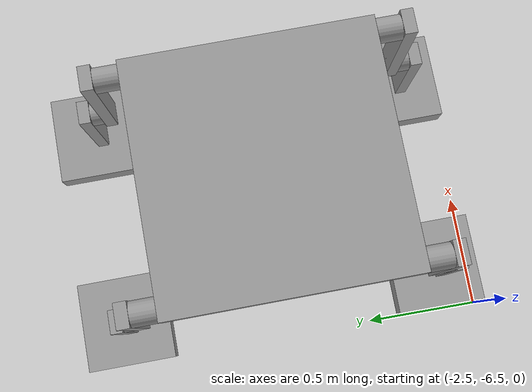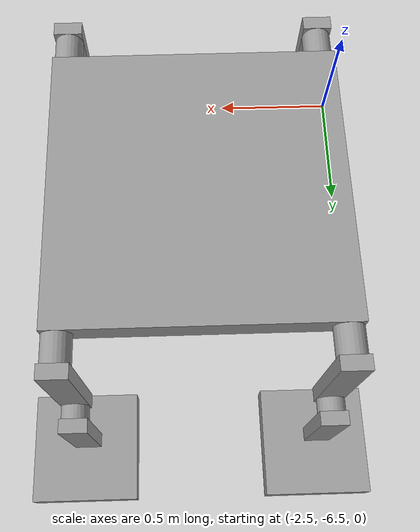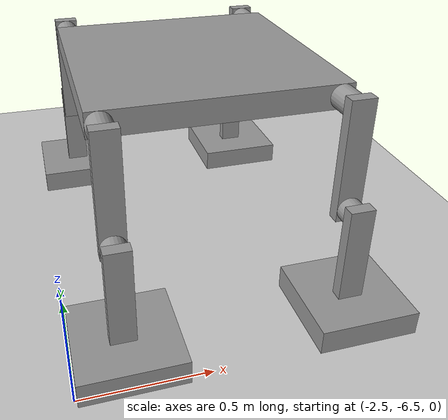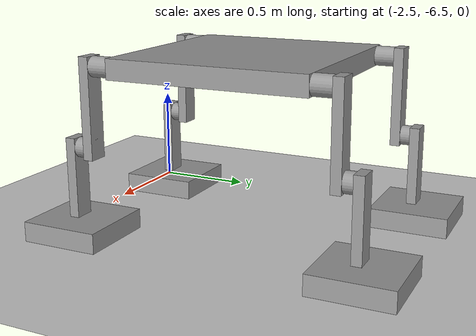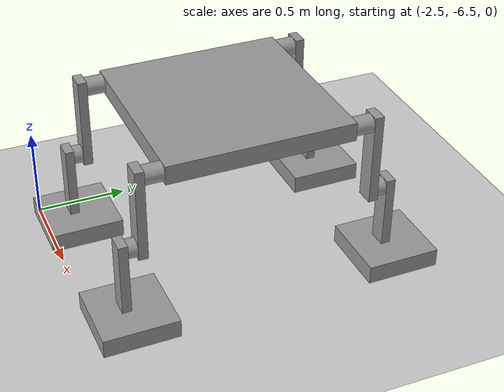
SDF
<sdf version="1.6">
 <world name="default">
  <model name="ground_plane">
   <static>1</static>
   <link name="link">
    <collision name="collision">
     <geometry><plane><normal>0 0 1</normal><size>100 100</size></plane></geometry>
     <surface>
      <contact><collide_bitmask>65535</collide_bitmask></contact>
      <friction><ode><mu>100</mu><mu2>50</mu2></ode></friction>
     </surface>
    </collision>
    <visual name="visual">
     <cast_shadows>0</cast_shadows>
     <geometry><plane><normal>0 0 1</normal><size>100 100</size></plane></geometry>
     <material>
      <script><uri>file://media/materials/scripts/gazebo.material</uri><name>Gazebo/Grey</name></script>
     </material>
    </visual>
   </link>
  </model>
  <model name="HumanoidRobot_2">
   <link name="link_0">
    <inertial>
     <mass>1</mass>
     <inertia>
      <ixx>0.166667</ixx>
      <ixy>0</ixy>
      <ixz>0</ixz>
      <iyy>0.166667</iyy>
      <iyz>0</iyz>
      <izz>0.166667</izz>
     </inertia>
    </inertial>
    <pose>-0 0 1 0 -0 0</pose>
    <visual name="visual">
     <geometry><box><size>1 1 0.1</size></box></geometry>
     <material>
      <lighting>1</lighting>
      <script><uri>file://media/materials/scripts/gazebo.material</uri><name>Gazebo/Grey</name></script>
      <shader type="pixel"><normal_map>__default__</normal_map></shader>
      <ambient>0.3 0.3 0.3 1</ambient>
      <diffuse>0.7 0.7 0.7 1</diffuse>
      <specular>0.01 0.01 0.01 1</specular>
      <emissive>0 0 0 1</emissive>
     </material>
    </visual>
    <collision name="collision">
     <geometry><box><size>1 1 0.1</size></box></geometry>
     <surface>
      <friction>
       <ode><mu>1</mu><mu2>1</mu2><fdir1>0 0 0</fdir1><slip1>0</slip1><slip2>0</slip2></ode>
       <torsional>
        <coefficient>1</coefficient>
        <patch_radius>0</patch_radius>
        <surface_radius>0</surface_radius>
        <use_patch_radius>1</use_patch_radius>
        <ode><slip>0</slip></ode>
       </torsional>
      </friction>
      <bounce><restitution_coefficient>0</restitution_coefficient><threshold>1e+06</threshold></bounce>
      <contact>
       <collide_without_contact>0</collide_without_contact>
       <collide_without_contact_bitmask>1</collide_without_contact_bitmask>
       <collide_bitmask>1</collide_bitmask>
       <ode>
        <soft_cfm>0</soft_cfm>
        <soft_erp>0.2</soft_erp>
        <kp>1e+13</kp>
        <kd>1</kd>
        <max_vel>0.01</max_vel>
        <min_depth>0</min_depth>
       </ode>
       <bullet>
        <split_impulse>1</split_impulse>
        <split_impulse_penetration_threshold>-0.01</split_impulse_penetration_threshold>
        <soft_cfm>0</soft_cfm>
        <soft_erp>0.2</soft_erp>
        <kp>1e+13</kp>
        <kd>1</kd>
       </bullet>
      </contact>
     </surface>
    </collision>
   </link>
   <link name="link_0_0">
    <inertial>
     <mass>1</mass>
     <inertia><ixx>0.145833</ixx><ixy>0</ixy><ixz>0</ixz><iyy>0.145833</iyy><iyz>0</iyz><izz>0.125</izz></inertia>
    </inertial>
    <pose>-0.45 -0.550013 1 1.5707 -0 0</pose>
    <visual name="visual">
     <geometry><cylinder><radius>0.05</radius><length>0.1</length></cylinder></geometry>
     <material>
      <lighting>1</lighting>
      <script><uri>file://media/materials/scripts/gazebo.material</uri><name>Gazebo/Grey</name></script>
      <shader type="pixel"><normal_map>__default__</normal_map></shader>
      <ambient>0.3 0.3 0.3 1</ambient>
      <diffuse>0.7 0.7 0.7 1</diffuse>
      <specular>0.01 0.01 0.01 1</specular>
      <emissive>0 0 0 1</emissive>
     </material>
    </visual>
    <collision name="collision">
     <geometry><cylinder><radius>0.05</radius><length>0.1</length></cylinder></geometry>
     <surface>
      <friction>
       <ode><mu>1</mu><mu2>1</mu2><fdir1>0 0 0</fdir1><slip1>0</slip1><slip2>0</slip2></ode>
       <torsional>
        <coefficient>1</coefficient>
        <patch_radius>0</patch_radius>
        <surface_radius>0</surface_radius>
        <use_patch_radius>1</use_patch_radius>
        <ode><slip>0</slip></ode>
       </torsional>
      </friction>
      <bounce><restitution_coefficient>0</restitution_coefficient><threshold>1e+06</threshold></bounce>
      <contact>
       <collide_without_contact>0</collide_without_contact>
       <collide_without_contact_bitmask>1</collide_without_contact_bitmask>
       <collide_bitmask>1</collide_bitmask>
       <ode>
        <soft_cfm>0</soft_cfm>
        <soft_erp>0.2</soft_erp>
        <kp>1e+13</kp>
        <kd>1</kd>
        <max_vel>0.01</max_vel>
        <min_depth>0</min_depth>
       </ode>
       <bullet>
        <split_impulse>1</split_impulse>
        <split_impulse_penetration_threshold>-0.01</split_impulse_penetration_threshold>
        <soft_cfm>0</soft_cfm>
        <soft_erp>0.2</soft_erp>
        <kp>1e+13</kp>
        <kd>1</kd>
       </bullet>
      </contact>
     </surface>
    </collision>
   </link>
   <link name="link_0_0_clone">
    <inertial>
     <mass>1</mass>
     <inertia><ixx>0.145833</ixx><ixy>0</ixy><ixz>0</ixz><iyy>0.145833</iyy><iyz>0</iyz><izz>0.125</izz></inertia>
    </inertial>
    <pose>-0.45 0.550005 1 1.5707 -0 0</pose>
    <visual name="visual_0">
     <geometry><cylinder><radius>0.05</radius><length>0.1</length></cylinder></geometry>
     <material>
      <lighting>1</lighting>
      <script><uri>file://media/materials/scripts/gazebo.material</uri><name>Gazebo/Grey</name></script>
      <shader type="pixel"><normal_map>__default__</normal_map></shader>
      <ambient>0.3 0.3 0.3 1</ambient>
      <diffuse>0.7 0.7 0.7 1</diffuse>
      <specular>0.01 0.01 0.01 1</specular>
      <emissive>0 0 0 1</emissive>
     </material>
    </visual>
    <collision name="collision">
     <geometry><cylinder><radius>0.05</radius><length>0.1</length></cylinder></geometry>
     <surface>
      <friction>
       <ode><mu>1</mu><mu2>1</mu2><fdir1>0 0 0</fdir1><slip1>0</slip1><slip2>0</slip2></ode>
       <torsional>
        <coefficient>1</coefficient>
        <patch_radius>0</patch_radius>
        <surface_radius>0</surface_radius>
        <use_patch_radius>1</use_patch_radius>
        <ode><slip>0</slip></ode>
       </torsional>
      </friction>
      <bounce><restitution_coefficient>0</restitution_coefficient><threshold>1e+06</threshold></bounce>
      <contact>
       <collide_without_contact>0</collide_without_contact>
       <collide_without_contact_bitmask>1</collide_without_contact_bitmask>
       <collide_bitmask>1</collide_bitmask>
       <ode>
        <soft_cfm>0</soft_cfm>
        <soft_erp>0.2</soft_erp>
        <kp>1e+13</kp>
        <kd>1</kd>
        <max_vel>0.01</max_vel>
        <min_depth>0</min_depth>
       </ode>
       <bullet>
        <split_impulse>1</split_impulse>
        <split_impulse_penetration_threshold>-0.01</split_impulse_penetration_threshold>
        <soft_cfm>0</soft_cfm>
        <soft_erp>0.2</soft_erp>
        <kp>1e+13</kp>
        <kd>1</kd>
       </bullet>
      </contact>
     </surface>
    </collision>
   </link>
   <link name="link_0_0_clone_0">
    <inertial>
     <mass>1</mass>
     <inertia><ixx>0.145833</ixx><ixy>0</ixy><ixz>0</ixz><iyy>0.145833</iyy><iyz>0</iyz><izz>0.125</izz></inertia>
    </inertial>
    <pose>0.45 -0.550005 1 1.5707 -0 0</pose>
    <visual name="visual_0">
     <geometry><cylinder><radius>0.05</radius><length>0.1</length></cylinder></geometry>
     <material>
      <lighting>1</lighting>
      <script><uri>file://media/materials/scripts/gazebo.material</uri><name>Gazebo/Grey</name></script>
      <shader type="pixel"><normal_map>__default__</normal_map></shader>
      <ambient>0.3 0.3 0.3 1</ambient>
      <diffuse>0.7 0.7 0.7 1</diffuse>
      <specular>0.01 0.01 0.01 1</specular>
      <emissive>0 0 0 1</emissive>
     </material>
    </visual>
    <collision name="collision">
     <geometry><cylinder><radius>0.05</radius><length>0.1</length></cylinder></geometry>
     <surface>
      <friction>
       <ode><mu>1</mu><mu2>1</mu2><fdir1>0 0 0</fdir1><slip1>0</slip1><slip2>0</slip2></ode>
       <torsional>
        <coefficient>1</coefficient>
        <patch_radius>0</patch_radius>
        <surface_radius>0</surface_radius>
        <use_patch_radius>1</use_patch_radius>
        <ode><slip>0</slip></ode>
       </torsional>
      </friction>
      <bounce><restitution_coefficient>0</restitution_coefficient><threshold>1e+06</threshold></bounce>
      <contact>
       <collide_without_contact>0</collide_without_contact>
       <collide_without_contact_bitmask>1</collide_without_contact_bitmask>
       <collide_bitmask>1</collide_bitmask>
       <ode>
        <soft_cfm>0</soft_cfm>
        <soft_erp>0.2</soft_erp>
        <kp>1e+13</kp>
        <kd>1</kd>
        <max_vel>0.01</max_vel>
        <min_depth>0</min_depth>
       </ode>
       <bullet>
        <split_impulse>1</split_impulse>
        <split_impulse_penetration_threshold>-0.01</split_impulse_penetration_threshold>
        <soft_cfm>0</soft_cfm>
        <soft_erp>0.2</soft_erp>
        <kp>1e+13</kp>
        <kd>1</kd>
       </bullet>
      </contact>
     </surface>
    </collision>
   </link>
   <link name="link_0_0_clone_1">
    <inertial>
     <mass>1</mass>
     <inertia><ixx>0.145833</ixx><ixy>0</ixy><ixz>0</ixz><iyy>0.145833</iyy><iyz>0</iyz><izz>0.125</izz></inertia>
    </inertial>
    <pose>0.45 0.550005 1 1.5707 -0 0</pose>
    <visual name="visual_0">
     <geometry><cylinder><radius>0.05</radius><length>0.1</length></cylinder></geometry>
     <material>
      <lighting>1</lighting>
      <script><uri>file://media/materials/scripts/gazebo.material</uri><name>Gazebo/Grey</name></script>
      <shader type="pixel"><normal_map>__default__</normal_map></shader>
      <ambient>0.3 0.3 0.3 1</ambient>
      <diffuse>0.7 0.7 0.7 1</diffuse>
      <specular>0.01 0.01 0.01 1</specular>
      <emissive>0 0 0 1</emissive>
     </material>
    </visual>
    <collision name="collision">
     <geometry><cylinder><radius>0.05</radius><length>0.1</length></cylinder></geometry>
     <surface>
      <friction>
       <ode><mu>1</mu><mu2>1</mu2><fdir1>0 0 0</fdir1><slip1>0</slip1><slip2>0</slip2></ode>
       <torsional>
        <coefficient>1</coefficient>
        <patch_radius>0</patch_radius>
        <surface_radius>0</surface_radius>
        <use_patch_radius>1</use_patch_radius>
        <ode><slip>0</slip></ode>
       </torsional>
      </friction>
      <bounce><restitution_coefficient>0</restitution_coefficient><threshold>1e+06</threshold></bounce>
      <contact>
       <collide_without_contact>0</collide_without_contact>
       <collide_without_contact_bitmask>1</collide_without_contact_bitmask>
       <collide_bitmask>1</collide_bitmask>
       <ode>
        <soft_cfm>0</soft_cfm>
        <soft_erp>0.2</soft_erp>
        <kp>1e+13</kp>
        <kd>1</kd>
        <max_vel>0.01</max_vel>
        <min_depth>0</min_depth>
       </ode>
       <bullet>
        <split_impulse>1</split_impulse>
        <split_impulse_penetration_threshold>-0.01</split_impulse_penetration_threshold>
        <soft_cfm>0</soft_cfm>
        <soft_erp>0.2</soft_erp>
        <kp>1e+13</kp>
        <kd>1</kd>
       </bullet>
      </contact>
     </surface>
    </collision>
   </link>
   <link name="link_0_0_clone_clone">
    <inertial>
     <mass>1</mass>
     <inertia><ixx>0.145833</ixx><ixy>0</ixy><ixz>0</ixz><iyy>0.145833</iyy><iyz>0</iyz><izz>0.125</izz></inertia>
    </inertial>
    <pose>-0.45 0.650015 0.60001 1.5707 -0 0</pose>
    <visual name="visual_0">
     <geometry><cylinder><radius>0.05</radius><length>0.1</length></cylinder></geometry>
     <material>
      <lighting>1</lighting>
      <script><uri>file://media/materials/scripts/gazebo.material</uri><name>Gazebo/Grey</name></script>
      <shader type="pixel"><normal_map>__default__</normal_map></shader>
      <ambient>0.3 0.3 0.3 1</ambient>
      <diffuse>0.7 0.7 0.7 1</diffuse>
      <specular>0.01 0.01 0.01 1</specular>
      <emissive>0 0 0 1</emissive>
     </material>
    </visual>
    <collision name="collision">
     <geometry><cylinder><radius>0.05</radius><length>0.1</length></cylinder></geometry>
     <surface>
      <friction>
       <ode><mu>1</mu><mu2>1</mu2><fdir1>0 0 0</fdir1><slip1>0</slip1><slip2>0</slip2></ode>
       <torsional>
        <coefficient>1</coefficient>
        <patch_radius>0</patch_radius>
        <surface_radius>0</surface_radius>
        <use_patch_radius>1</use_patch_radius>
        <ode><slip>0</slip></ode>
       </torsional>
      </friction>
      <bounce><restitution_coefficient>0</restitution_coefficient><threshold>1e+06</threshold></bounce>
      <contact>
       <collide_without_contact>0</collide_without_contact>
       <collide_without_contact_bitmask>1</collide_without_contact_bitmask>
       <collide_bitmask>1</collide_bitmask>
       <ode>
        <soft_cfm>0</soft_cfm>
        <soft_erp>0.2</soft_erp>
        <kp>1e+13</kp>
        <kd>1</kd>
        <max_vel>0.01</max_vel>
        <min_depth>0</min_depth>
       </ode>
       <bullet>
        <split_impulse>1</split_impulse>
        <split_impulse_penetration_threshold>-0.01</split_impulse_penetration_threshold>
        <soft_cfm>0</soft_cfm>
        <soft_erp>0.2</soft_erp>
        <kp>1e+13</kp>
        <kd>1</kd>
       </bullet>
      </contact>
     </surface>
    </collision>
   </link>
   <link name="link_0_0_clone_clone_0">
    <inertial>
     <mass>1</mass>
     <inertia><ixx>0.145833</ixx><ixy>0</ixy><ixz>0</ixz><iyy>0.145833</iyy><iyz>0</iyz><izz>0.125</izz></inertia>
    </inertial>
    <pose>0.45 0.650015 0.60001 1.5707 -0 0</pose>
    <visual name="visual_0">
     <geometry><cylinder><radius>0.05</radius><length>0.1</length></cylinder></geometry>
     <material>
      <lighting>1</lighting>
      <script><uri>file://media/materials/scripts/gazebo.material</uri><name>Gazebo/Grey</name></script>
      <shader type="pixel"><normal_map>__default__</normal_map></shader>
      <ambient>0.3 0.3 0.3 1</ambient>
      <diffuse>0.7 0.7 0.7 1</diffuse>
      <specular>0.01 0.01 0.01 1</specular>
      <emissive>0 0 0 1</emissive>
     </material>
    </visual>
    <collision name="collision">
     <geometry><cylinder><radius>0.05</radius><length>0.1</length></cylinder></geometry>
     <surface>
      <friction>
       <ode><mu>1</mu><mu2>1</mu2><fdir1>0 0 0</fdir1><slip1>0</slip1><slip2>0</slip2></ode>
       <torsional>
        <coefficient>1</coefficient>
        <patch_radius>0</patch_radius>
        <surface_radius>0</surface_radius>
        <use_patch_radius>1</use_patch_radius>
        <ode><slip>0</slip></ode>
       </torsional>
      </friction>
      <bounce><restitution_coefficient>0</restitution_coefficient><threshold>1e+06</threshold></bounce>
      <contact>
       <collide_without_contact>0</collide_without_contact>
       <collide_without_contact_bitmask>1</collide_without_contact_bitmask>
       <collide_bitmask>1</collide_bitmask>
       <ode>
        <soft_cfm>0</soft_cfm>
        <soft_erp>0.2</soft_erp>
        <kp>1e+13</kp>
        <kd>1</kd>
        <max_vel>0.01</max_vel>
        <min_depth>0</min_depth>
       </ode>
       <bullet>
        <split_impulse>1</split_impulse>
        <split_impulse_penetration_threshold>-0.01</split_impulse_penetration_threshold>
        <soft_cfm>0</soft_cfm>
        <soft_erp>0.2</soft_erp>
        <kp>1e+13</kp>
        <kd>1</kd>
       </bullet>
      </contact>
     </surface>
    </collision>
   </link>
   <link name="link_0_0_clone_clone_1">
    <inertial>
     <mass>1</mass>
     <inertia><ixx>0.145833</ixx><ixy>0</ixy><ixz>0</ixz><iyy>0.145833</iyy><iyz>0</iyz><izz>0.125</izz></inertia>
    </inertial>
    <pose>0.45 -0.650015 0.60001 1.5707 -0 0</pose>
    <visual name="visual_0">
     <geometry><cylinder><radius>0.05</radius><length>0.1</length></cylinder></geometry>
     <material>
      <lighting>1</lighting>
      <script><uri>file://media/materials/scripts/gazebo.material</uri><name>Gazebo/Grey</name></script>
      <shader type="pixel"><normal_map>__default__</normal_map></shader>
      <ambient>0.3 0.3 0.3 1</ambient>
      <diffuse>0.7 0.7 0.7 1</diffuse>
      <specular>0.01 0.01 0.01 1</specular>
      <emissive>0 0 0 1</emissive>
     </material>
    </visual>
    <collision name="collision">
     <geometry><cylinder><radius>0.05</radius><length>0.1</length></cylinder></geometry>
     <surface>
      <friction>
       <ode><mu>1</mu><mu2>1</mu2><fdir1>0 0 0</fdir1><slip1>0</slip1><slip2>0</slip2></ode>
       <torsional>
        <coefficient>1</coefficient>
        <patch_radius>0</patch_radius>
        <surface_radius>0</surface_radius>
        <use_patch_radius>1</use_patch_radius>
        <ode><slip>0</slip></ode>
       </torsional>
      </friction>
      <bounce><restitution_coefficient>0</restitution_coefficient><threshold>1e+06</threshold></bounce>
      <contact>
       <collide_without_contact>0</collide_without_contact>
       <collide_without_contact_bitmask>1</collide_without_contact_bitmask>
       <collide_bitmask>1</collide_bitmask>
       <ode>
        <soft_cfm>0</soft_cfm>
        <soft_erp>0.2</soft_erp>
        <kp>1e+13</kp>
        <kd>1</kd>
        <max_vel>0.01</max_vel>
        <min_depth>0</min_depth>
       </ode>
       <bullet>
        <split_impulse>1</split_impulse>
        <split_impulse_penetration_threshold>-0.01</split_impulse_penetration_threshold>
        <soft_cfm>0</soft_cfm>
        <soft_erp>0.2</soft_erp>
        <kp>1e+13</kp>
        <kd>1</kd>
       </bullet>
      </contact>
     </surface>
    </collision>
   </link>
   <link name="link_0_0_clone_clone_2">
    <inertial>
     <mass>1</mass>
     <inertia><ixx>0.145833</ixx><ixy>0</ixy><ixz>0</ixz><iyy>0.145833</iyy><iyz>0</iyz><izz>0.125</izz></inertia>
    </inertial>
    <pose>-0.45 -0.650023 0.60001 1.5707 -0 0</pose>
    <visual name="visual_0">
     <geometry><cylinder><radius>0.05</radius><length>0.1</length></cylinder></geometry>
     <material>
      <lighting>1</lighting>
      <script><uri>file://media/materials/scripts/gazebo.material</uri><name>Gazebo/Grey</name></script>
      <shader type="pixel"><normal_map>__default__</normal_map></shader>
      <ambient>0.3 0.3 0.3 1</ambient>
      <diffuse>0.7 0.7 0.7 1</diffuse>
      <specular>0.01 0.01 0.01 1</specular>
      <emissive>0 0 0 1</emissive>
     </material>
    </visual>
    <collision name="collision">
     <geometry><cylinder><radius>0.05</radius><length>0.1</length></cylinder></geometry>
     <surface>
      <friction>
       <ode><mu>1</mu><mu2>1</mu2><fdir1>0 0 0</fdir1><slip1>0</slip1><slip2>0</slip2></ode>
       <torsional>
        <coefficient>1</coefficient>
        <patch_radius>0</patch_radius>
        <surface_radius>0</surface_radius>
        <use_patch_radius>1</use_patch_radius>
        <ode><slip>0</slip></ode>
       </torsional>
      </friction>
      <bounce><restitution_coefficient>0</restitution_coefficient><threshold>1e+06</threshold></bounce>
      <contact>
       <collide_without_contact>0</collide_without_contact>
       <collide_without_contact_bitmask>1</collide_without_contact_bitmask>
       <collide_bitmask>1</collide_bitmask>
       <ode>
        <soft_cfm>0</soft_cfm>
        <soft_erp>0.2</soft_erp>
        <kp>1e+13</kp>
        <kd>1</kd>
        <max_vel>0.01</max_vel>
        <min_depth>0</min_depth>
       </ode>
       <bullet>
        <split_impulse>1</split_impulse>
        <split_impulse_penetration_threshold>-0.01</split_impulse_penetration_threshold>
        <soft_cfm>0</soft_cfm>
        <soft_erp>0.2</soft_erp>
        <kp>1e+13</kp>
        <kd>1</kd>
       </bullet>
      </contact>
     </surface>
    </collision>
   </link>
   <link name="link_0_1">
    <inertial>
     <mass>1</mass>
     <inertia>
      <ixx>0.166667</ixx>
      <ixy>0</ixy>
      <ixz>0</ixz>
      <iyy>0.166667</iyy>
      <iyz>0</iyz>
      <izz>0.166667</izz>
     </inertia>
    </inertial>
    <pose>-0.439136 0.748383 0.200014 0 -0 0</pose>
    <visual name="visual">
     <geometry><box><size>0.4 0.4 0.1</size></box></geometry>
     <material>
      <lighting>1</lighting>
      <script><uri>file://media/materials/scripts/gazebo.material</uri><name>Gazebo/Grey</name></script>
      <shader type="pixel"><normal_map>__default__</normal_map></shader>
      <ambient>0.3 0.3 0.3 1</ambient>
      <diffuse>0.7 0.7 0.7 1</diffuse>
      <specular>0.01 0.01 0.01 1</specular>
      <emissive>0 0 0 1</emissive>
     </material>
    </visual>
    <collision name="collision">
     <geometry><box><size>0.4 0.4 0.1</size></box></geometry>
     <surface>
      <friction>
       <ode><mu>1</mu><mu2>1</mu2><fdir1>0 0 0</fdir1><slip1>0</slip1><slip2>0</slip2></ode>
       <torsional>
        <coefficient>1</coefficient>
        <patch_radius>0</patch_radius>
        <surface_radius>0</surface_radius>
        <use_patch_radius>1</use_patch_radius>
        <ode><slip>0</slip></ode>
       </torsional>
      </friction>
      <bounce><restitution_coefficient>0</restitution_coefficient><threshold>1e+06</threshold></bounce>
      <contact>
       <collide_without_contact>0</collide_without_contact>
       <collide_without_contact_bitmask>1</collide_without_contact_bitmask>
       <collide_bitmask>1</collide_bitmask>
       <ode>
        <soft_cfm>0</soft_cfm>
        <soft_erp>0.2</soft_erp>
        <kp>1e+13</kp>
        <kd>1</kd>
        <max_vel>0.01</max_vel>
        <min_depth>0</min_depth>
       </ode>
       <bullet>
        <split_impulse>1</split_impulse>
        <split_impulse_penetration_threshold>-0.01</split_impulse_penetration_threshold>
        <soft_cfm>0</soft_cfm>
        <soft_erp>0.2</soft_erp>
        <kp>1e+13</kp>
        <kd>1</kd>
       </bullet>
      </contact>
     </surface>
    </collision>
   </link>
   <link name="link_0_1_clone">
    <inertial>
     <mass>1</mass>
     <inertia>
      <ixx>0.166667</ixx>
      <ixy>0</ixy>
      <ixz>0</ixz>
      <iyy>0.166667</iyy>
      <iyz>0</iyz>
      <izz>0.166667</izz>
     </inertia>
    </inertial>
    <pose>0.460864 0.748383 0.200014 0 -0 0</pose>
    <visual name="visual_0">
     <geometry><box><size>0.4 0.4 0.1</size></box></geometry>
     <material>
      <lighting>1</lighting>
      <script><uri>file://media/materials/scripts/gazebo.material</uri><name>Gazebo/Grey</name></script>
      <shader type="pixel"><normal_map>__default__</normal_map></shader>
      <ambient>0.3 0.3 0.3 1</ambient>
      <diffuse>0.7 0.7 0.7 1</diffuse>
      <specular>0.01 0.01 0.01 1</specular>
      <emissive>0 0 0 1</emissive>
     </material>
    </visual>
    <collision name="collision">
     <geometry><box><size>0.4 0.4 0.1</size></box></geometry>
     <surface>
      <friction>
       <ode><mu>1</mu><mu2>1</mu2><fdir1>0 0 0</fdir1><slip1>0</slip1><slip2>0</slip2></ode>
       <torsional>
        <coefficient>1</coefficient>
        <patch_radius>0</patch_radius>
        <surface_radius>0</surface_radius>
        <use_patch_radius>1</use_patch_radius>
        <ode><slip>0</slip></ode>
       </torsional>
      </friction>
      <bounce><restitution_coefficient>0</restitution_coefficient><threshold>1e+06</threshold></bounce>
      <contact>
       <collide_without_contact>0</collide_without_contact>
       <collide_without_contact_bitmask>1</collide_without_contact_bitmask>
       <collide_bitmask>1</collide_bitmask>
       <ode>
        <soft_cfm>0</soft_cfm>
        <soft_erp>0.2</soft_erp>
        <kp>1e+13</kp>
        <kd>1</kd>
        <max_vel>0.01</max_vel>
        <min_depth>0</min_depth>
       </ode>
       <bullet>
        <split_impulse>1</split_impulse>
        <split_impulse_penetration_threshold>-0.01</split_impulse_penetration_threshold>
        <soft_cfm>0</soft_cfm>
        <soft_erp>0.2</soft_erp>
        <kp>1e+13</kp>
        <kd>1</kd>
       </bullet>
      </contact>
     </surface>
    </collision>
   </link>
   <link name="link_0_1_clone_0">
    <inertial>
     <mass>1</mass>
     <inertia>
      <ixx>0.166667</ixx>
      <ixy>0</ixy>
      <ixz>0</ixz>
      <iyy>0.166667</iyy>
      <iyz>0</iyz>
      <izz>0.166667</izz>
     </inertia>
    </inertial>
    <pose>0.460864 -0.701655 0.200014 0 -0 0</pose>
    <visual name="visual_0">
     <geometry><box><size>0.4 0.4 0.1</size></box></geometry>
     <material>
      <lighting>1</lighting>
      <script><uri>file://media/materials/scripts/gazebo.material</uri><name>Gazebo/Grey</name></script>
      <shader type="pixel"><normal_map>__default__</normal_map></shader>
      <ambient>0.3 0.3 0.3 1</ambient>
      <diffuse>0.7 0.7 0.7 1</diffuse>
      <specular>0.01 0.01 0.01 1</specular>
      <emissive>0 0 0 1</emissive>
     </material>
    </visual>
    <collision name="collision">
     <geometry><box><size>0.4 0.4 0.1</size></box></geometry>
     <surface>
      <friction>
       <ode><mu>1</mu><mu2>1</mu2><fdir1>0 0 0</fdir1><slip1>0</slip1><slip2>0</slip2></ode>
       <torsional>
        <coefficient>1</coefficient>
        <patch_radius>0</patch_radius>
        <surface_radius>0</surface_radius>
        <use_patch_radius>1</use_patch_radius>
        <ode><slip>0</slip></ode>
       </torsional>
      </friction>
      <bounce><restitution_coefficient>0</restitution_coefficient><threshold>1e+06</threshold></bounce>
      <contact>
       <collide_without_contact>0</collide_without_contact>
       <collide_without_contact_bitmask>1</collide_without_contact_bitmask>
       <collide_bitmask>1</collide_bitmask>
       <ode>
        <soft_cfm>0</soft_cfm>
        <soft_erp>0.2</soft_erp>
        <kp>1e+13</kp>
        <kd>1</kd>
        <max_vel>0.01</max_vel>
        <min_depth>0</min_depth>
       </ode>
       <bullet>
        <split_impulse>1</split_impulse>
        <split_impulse_penetration_threshold>-0.01</split_impulse_penetration_threshold>
        <soft_cfm>0</soft_cfm>
        <soft_erp>0.2</soft_erp>
        <kp>1e+13</kp>
        <kd>1</kd>
       </bullet>
      </contact>
     </surface>
    </collision>
   </link>
   <link name="link_0_1_clone_1">
    <inertial>
     <mass>1</mass>
     <inertia>
      <ixx>0.166667</ixx>
      <ixy>0</ixy>
      <ixz>0</ixz>
      <iyy>0.166667</iyy>
      <iyz>0</iyz>
      <izz>0.166667</izz>
     </inertia>
    </inertial>
    <pose>-0.439136 -0.701664 0.200014 0 -0 0</pose>
    <visual name="visual_0">
     <geometry><box><size>0.4 0.4 0.1</size></box></geometry>
     <material>
      <lighting>1</lighting>
      <script><uri>file://media/materials/scripts/gazebo.material</uri><name>Gazebo/Grey</name></script>
      <shader type="pixel"><normal_map>__default__</normal_map></shader>
      <ambient>0.3 0.3 0.3 1</ambient>
      <diffuse>0.7 0.7 0.7 1</diffuse>
      <specular>0.01 0.01 0.01 1</specular>
      <emissive>0 0 0 1</emissive>
     </material>
    </visual>
    <collision name="collision">
     <geometry><box><size>0.4 0.4 0.1</size></box></geometry>
     <surface>
      <friction>
       <ode><mu>1</mu><mu2>1</mu2><fdir1>0 0 0</fdir1><slip1>0</slip1><slip2>0</slip2></ode>
       <torsional>
        <coefficient>1</coefficient>
        <patch_radius>0</patch_radius>
        <surface_radius>0</surface_radius>
        <use_patch_radius>1</use_patch_radius>
        <ode><slip>0</slip></ode>
       </torsional>
      </friction>
      <bounce><restitution_coefficient>0</restitution_coefficient><threshold>1e+06</threshold></bounce>
      <contact>
       <collide_without_contact>0</collide_without_contact>
       <collide_without_contact_bitmask>1</collide_without_contact_bitmask>
       <collide_bitmask>1</collide_bitmask>
       <ode>
        <soft_cfm>0</soft_cfm>
        <soft_erp>0.2</soft_erp>
        <kp>1e+13</kp>
        <kd>1</kd>
        <max_vel>0.01</max_vel>
        <min_depth>0</min_depth>
       </ode>
       <bullet>
        <split_impulse>1</split_impulse>
        <split_impulse_penetration_threshold>-0.01</split_impulse_penetration_threshold>
        <soft_cfm>0</soft_cfm>
        <soft_erp>0.2</soft_erp>
        <kp>1e+13</kp>
        <kd>1</kd>
       </bullet>
      </contact>
     </surface>
    </collision>
   </link>
   <link name="link_1">
    <inertial>
     <mass>1</mass>
     <inertia>
      <ixx>0.166667</ixx>
      <ixy>0</ixy>
      <ixz>0</ixz>
      <iyy>0.166667</iyy>
      <iyz>0</iyz>
      <izz>0.166667</izz>
     </inertia>
    </inertial>
    <pose>-0.45 0.62501 0.800005 0 -0 0</pose>
    <visual name="visual">
     <geometry><box><size>0.1 0.05 0.5</size></box></geometry>
     <material>
      <lighting>1</lighting>
      <script><uri>file://media/materials/scripts/gazebo.material</uri><name>Gazebo/Grey</name></script>
      <shader type="pixel"><normal_map>__default__</normal_map></shader>
      <ambient>0.3 0.3 0.3 1</ambient>
      <diffuse>0.7 0.7 0.7 1</diffuse>
      <specular>0.01 0.01 0.01 1</specular>
      <emissive>0 0 0 1</emissive>
     </material>
    </visual>
    <collision name="collision">
     <geometry><box><size>0.1 0.05 0.5</size></box></geometry>
     <surface>
      <friction>
       <ode><mu>1</mu><mu2>1</mu2><fdir1>0 0 0</fdir1><slip1>0</slip1><slip2>0</slip2></ode>
       <torsional>
        <coefficient>1</coefficient>
        <patch_radius>0</patch_radius>
        <surface_radius>0</surface_radius>
        <use_patch_radius>1</use_patch_radius>
        <ode><slip>0</slip></ode>
       </torsional>
      </friction>
      <bounce><restitution_coefficient>0</restitution_coefficient><threshold>1e+06</threshold></bounce>
      <contact>
       <collide_without_contact>0</collide_without_contact>
       <collide_without_contact_bitmask>1</collide_without_contact_bitmask>
       <collide_bitmask>1</collide_bitmask>
       <ode>
        <soft_cfm>0</soft_cfm>
        <soft_erp>0.2</soft_erp>
        <kp>1e+13</kp>
        <kd>1</kd>
        <max_vel>0.01</max_vel>
        <min_depth>0</min_depth>
       </ode>
       <bullet>
        <split_impulse>1</split_impulse>
        <split_impulse_penetration_threshold>-0.01</split_impulse_penetration_threshold>
        <soft_cfm>0</soft_cfm>
        <soft_erp>0.2</soft_erp>
        <kp>1e+13</kp>
        <kd>1</kd>
       </bullet>
      </contact>
     </surface>
    </collision>
   </link>
   <link name="link_1_clone">
    <inertial>
     <mass>1</mass>
     <inertia>
      <ixx>0.166667</ixx>
      <ixy>0</ixy>
      <ixz>0</ixz>
      <iyy>0.166667</iyy>
      <iyz>0</iyz>
      <izz>0.166667</izz>
     </inertia>
    </inertial>
    <pose>0.45 0.62501 0.800005 0 -0 0</pose>
    <visual name="visual">
     <geometry><box><size>0.1 0.05 0.5</size></box></geometry>
     <material>
      <lighting>1</lighting>
      <script><uri>file://media/materials/scripts/gazebo.material</uri><name>Gazebo/Grey</name></script>
      <shader type="pixel"><normal_map>__default__</normal_map></shader>
      <ambient>0.3 0.3 0.3 1</ambient>
      <diffuse>0.7 0.7 0.7 1</diffuse>
      <specular>0.01 0.01 0.01 1</specular>
      <emissive>0 0 0 1</emissive>
     </material>
    </visual>
    <collision name="collision">
     <geometry><box><size>0.1 0.05 0.5</size></box></geometry>
     <surface>
      <friction>
       <ode><mu>1</mu><mu2>1</mu2><fdir1>0 0 0</fdir1><slip1>0</slip1><slip2>0</slip2></ode>
       <torsional>
        <coefficient>1</coefficient>
        <patch_radius>0</patch_radius>
        <surface_radius>0</surface_radius>
        <use_patch_radius>1</use_patch_radius>
        <ode><slip>0</slip></ode>
       </torsional>
      </friction>
      <bounce><restitution_coefficient>0</restitution_coefficient><threshold>1e+06</threshold></bounce>
      <contact>
       <collide_without_contact>0</collide_without_contact>
       <collide_without_contact_bitmask>1</collide_without_contact_bitmask>
       <collide_bitmask>1</collide_bitmask>
       <ode>
        <soft_cfm>0</soft_cfm>
        <soft_erp>0.2</soft_erp>
        <kp>1e+13</kp>
        <kd>1</kd>
        <max_vel>0.01</max_vel>
        <min_depth>0</min_depth>
       </ode>
       <bullet>
        <split_impulse>1</split_impulse>
        <split_impulse_penetration_threshold>-0.01</split_impulse_penetration_threshold>
        <soft_cfm>0</soft_cfm>
        <soft_erp>0.2</soft_erp>
        <kp>1e+13</kp>
        <kd>1</kd>
       </bullet>
      </contact>
     </surface>
    </collision>
   </link>
   <link name="link_1_clone_0">
    <inertial>
     <mass>1</mass>
     <inertia>
      <ixx>0.166667</ixx>
      <ixy>0</ixy>
      <ixz>0</ixz>
      <iyy>0.166667</iyy>
      <iyz>0</iyz>
      <izz>0.166667</izz>
     </inertia>
    </inertial>
    <pose>0.45 -0.62501 0.800005 0 -0 0</pose>
    <visual name="visual">
     <geometry><box><size>0.1 0.05 0.5</size></box></geometry>
     <material>
      <lighting>1</lighting>
      <script><uri>file://media/materials/scripts/gazebo.material</uri><name>Gazebo/Grey</name></script>
      <shader type="pixel"><normal_map>__default__</normal_map></shader>
      <ambient>0.3 0.3 0.3 1</ambient>
      <diffuse>0.7 0.7 0.7 1</diffuse>
      <specular>0.01 0.01 0.01 1</specular>
      <emissive>0 0 0 1</emissive>
     </material>
    </visual>
    <collision name="collision">
     <geometry><box><size>0.1 0.05 0.5</size></box></geometry>
     <surface>
      <friction>
       <ode><mu>1</mu><mu2>1</mu2><fdir1>0 0 0</fdir1><slip1>0</slip1><slip2>0</slip2></ode>
       <torsional>
        <coefficient>1</coefficient>
        <patch_radius>0</patch_radius>
        <surface_radius>0</surface_radius>
        <use_patch_radius>1</use_patch_radius>
        <ode><slip>0</slip></ode>
       </torsional>
      </friction>
      <bounce><restitution_coefficient>0</restitution_coefficient><threshold>1e+06</threshold></bounce>
      <contact>
       <collide_without_contact>0</collide_without_contact>
       <collide_without_contact_bitmask>1</collide_without_contact_bitmask>
       <collide_bitmask>1</collide_bitmask>
       <ode>
        <soft_cfm>0</soft_cfm>
        <soft_erp>0.2</soft_erp>
        <kp>1e+13</kp>
        <kd>1</kd>
        <max_vel>0.01</max_vel>
        <min_depth>0</min_depth>
       </ode>
       <bullet>
        <split_impulse>1</split_impulse>
        <split_impulse_penetration_threshold>-0.01</split_impulse_penetration_threshold>
        <soft_cfm>0</soft_cfm>
        <soft_erp>0.2</soft_erp>
        <kp>1e+13</kp>
        <kd>1</kd>
       </bullet>
      </contact>
     </surface>
    </collision>
   </link>
   <link name="link_1_clone_1">
    <inertial>
     <mass>1</mass>
     <inertia>
      <ixx>0.166667</ixx>
      <ixy>0</ixy>
      <ixz>0</ixz>
      <iyy>0.166667</iyy>
      <iyz>0</iyz>
      <izz>0.166667</izz>
     </inertia>
    </inertial>
    <pose>-0.45 -0.625018 0.800005 0 -0 0</pose>
    <visual name="visual">
     <geometry><box><size>0.1 0.05 0.5</size></box></geometry>
     <material>
      <lighting>1</lighting>
      <script><uri>file://media/materials/scripts/gazebo.material</uri><name>Gazebo/Grey</name></script>
      <shader type="pixel"><normal_map>__default__</normal_map></shader>
      <ambient>0.3 0.3 0.3 1</ambient>
      <diffuse>0.7 0.7 0.7 1</diffuse>
      <specular>0.01 0.01 0.01 1</specular>
      <emissive>0 0 0 1</emissive>
     </material>
    </visual>
    <collision name="collision">
     <geometry><box><size>0.1 0.05 0.5</size></box></geometry>
     <surface>
      <friction>
       <ode><mu>1</mu><mu2>1</mu2><fdir1>0 0 0</fdir1><slip1>0</slip1><slip2>0</slip2></ode>
       <torsional>
        <coefficient>1</coefficient>
        <patch_radius>0</patch_radius>
        <surface_radius>0</surface_radius>
        <use_patch_radius>1</use_patch_radius>
        <ode><slip>0</slip></ode>
       </torsional>
      </friction>
      <bounce><restitution_coefficient>0</restitution_coefficient><threshold>1e+06</threshold></bounce>
      <contact>
       <collide_without_contact>0</collide_without_contact>
       <collide_without_contact_bitmask>1</collide_without_contact_bitmask>
       <collide_bitmask>1</collide_bitmask>
       <ode>
        <soft_cfm>0</soft_cfm>
        <soft_erp>0.2</soft_erp>
        <kp>1e+13</kp>
        <kd>1</kd>
        <max_vel>0.01</max_vel>
        <min_depth>0</min_depth>
       </ode>
       <bullet>
        <split_impulse>1</split_impulse>
        <split_impulse_penetration_threshold>-0.01</split_impulse_penetration_threshold>
        <soft_cfm>0</soft_cfm>
        <soft_erp>0.2</soft_erp>
        <kp>1e+13</kp>
        <kd>1</kd>
       </bullet>
      </contact>
     </surface>
    </collision>
   </link>
   <link name="link_1_clone_2">
    <inertial>
     <mass>1</mass>
     <inertia>
      <ixx>0.166667</ixx>
      <ixy>0</ixy>
      <ixz>0</ixz>
      <iyy>0.166667</iyy>
      <iyz>0</iyz>
      <izz>0.166667</izz>
     </inertia>
    </inertial>
    <pose>-0.45 0.725019 0.400014 0 -0 0</pose>
    <visual name="visual">
     <geometry><box><size>0.1 0.05 0.5</size></box></geometry>
     <material>
      <lighting>1</lighting>
      <script><uri>file://media/materials/scripts/gazebo.material</uri><name>Gazebo/Grey</name></script>
      <shader type="pixel"><normal_map>__default__</normal_map></shader>
      <ambient>0.3 0.3 0.3 1</ambient>
      <diffuse>0.7 0.7 0.7 1</diffuse>
      <specular>0.01 0.01 0.01 1</specular>
      <emissive>0 0 0 1</emissive>
     </material>
    </visual>
    <collision name="collision">
     <geometry><box><size>0.1 0.05 0.5</size></box></geometry>
     <surface>
      <friction>
       <ode><mu>1</mu><mu2>1</mu2><fdir1>0 0 0</fdir1><slip1>0</slip1><slip2>0</slip2></ode>
       <torsional>
        <coefficient>1</coefficient>
        <patch_radius>0</patch_radius>
        <surface_radius>0</surface_radius>
        <use_patch_radius>1</use_patch_radius>
        <ode><slip>0</slip></ode>
       </torsional>
      </friction>
      <bounce><restitution_coefficient>0</restitution_coefficient><threshold>1e+06</threshold></bounce>
      <contact>
       <collide_without_contact>0</collide_without_contact>
       <collide_without_contact_bitmask>1</collide_without_contact_bitmask>
       <collide_bitmask>1</collide_bitmask>
       <ode>
        <soft_cfm>0</soft_cfm>
        <soft_erp>0.2</soft_erp>
        <kp>1e+13</kp>
        <kd>1</kd>
        <max_vel>0.01</max_vel>
        <min_depth>0</min_depth>
       </ode>
       <bullet>
        <split_impulse>1</split_impulse>
        <split_impulse_penetration_threshold>-0.01</split_impulse_penetration_threshold>
        <soft_cfm>0</soft_cfm>
        <soft_erp>0.2</soft_erp>
        <kp>1e+13</kp>
        <kd>1</kd>
       </bullet>
      </contact>
     </surface>
    </collision>
   </link>
   <link name="link_1_clone_3">
    <inertial>
     <mass>1</mass>
     <inertia>
      <ixx>0.166667</ixx>
      <ixy>0</ixy>
      <ixz>0</ixz>
      <iyy>0.166667</iyy>
      <iyz>0</iyz>
      <izz>0.166667</izz>
     </inertia>
    </inertial>
    <pose>0.45 0.725019 0.400014 0 -0 0</pose>
    <visual name="visual">
     <geometry><box><size>0.1 0.05 0.5</size></box></geometry>
     <material>
      <lighting>1</lighting>
      <script><uri>file://media/materials/scripts/gazebo.material</uri><name>Gazebo/Grey</name></script>
      <shader type="pixel"><normal_map>__default__</normal_map></shader>
      <ambient>0.3 0.3 0.3 1</ambient>
      <diffuse>0.7 0.7 0.7 1</diffuse>
      <specular>0.01 0.01 0.01 1</specular>
      <emissive>0 0 0 1</emissive>
     </material>
    </visual>
    <collision name="collision">
     <geometry><box><size>0.1 0.05 0.5</size></box></geometry>
     <surface>
      <friction>
       <ode><mu>1</mu><mu2>1</mu2><fdir1>0 0 0</fdir1><slip1>0</slip1><slip2>0</slip2></ode>
       <torsional>
        <coefficient>1</coefficient>
        <patch_radius>0</patch_radius>
        <surface_radius>0</surface_radius>
        <use_patch_radius>1</use_patch_radius>
        <ode><slip>0</slip></ode>
       </torsional>
      </friction>
      <bounce><restitution_coefficient>0</restitution_coefficient><threshold>1e+06</threshold></bounce>
      <contact>
       <collide_without_contact>0</collide_without_contact>
       <collide_without_contact_bitmask>1</collide_without_contact_bitmask>
       <collide_bitmask>1</collide_bitmask>
       <ode>
        <soft_cfm>0</soft_cfm>
        <soft_erp>0.2</soft_erp>
        <kp>1e+13</kp>
        <kd>1</kd>
        <max_vel>0.01</max_vel>
        <min_depth>0</min_depth>
       </ode>
       <bullet>
        <split_impulse>1</split_impulse>
        <split_impulse_penetration_threshold>-0.01</split_impulse_penetration_threshold>
        <soft_cfm>0</soft_cfm>
        <soft_erp>0.2</soft_erp>
        <kp>1e+13</kp>
        <kd>1</kd>
       </bullet>
      </contact>
     </surface>
    </collision>
   </link>
   <link name="link_1_clone_4">
    <inertial>
     <mass>1</mass>
     <inertia>
      <ixx>0.166667</ixx>
      <ixy>0</ixy>
      <ixz>0</ixz>
      <iyy>0.166667</iyy>
      <iyz>0</iyz>
      <izz>0.166667</izz>
     </inertia>
    </inertial>
    <pose>0.45 -0.725019 0.400014 0 -0 0</pose>
    <visual name="visual">
     <geometry><box><size>0.1 0.05 0.5</size></box></geometry>
     <material>
      <lighting>1</lighting>
      <script><uri>file://media/materials/scripts/gazebo.material</uri><name>Gazebo/Grey</name></script>
      <shader type="pixel"><normal_map>__default__</normal_map></shader>
      <ambient>0.3 0.3 0.3 1</ambient>
      <diffuse>0.7 0.7 0.7 1</diffuse>
      <specular>0.01 0.01 0.01 1</specular>
      <emissive>0 0 0 1</emissive>
     </material>
    </visual>
    <collision name="collision">
     <geometry><box><size>0.1 0.05 0.5</size></box></geometry>
     <surface>
      <friction>
       <ode><mu>1</mu><mu2>1</mu2><fdir1>0 0 0</fdir1><slip1>0</slip1><slip2>0</slip2></ode>
       <torsional>
        <coefficient>1</coefficient>
        <patch_radius>0</patch_radius>
        <surface_radius>0</surface_radius>
        <use_patch_radius>1</use_patch_radius>
        <ode><slip>0</slip></ode>
       </torsional>
      </friction>
      <bounce><restitution_coefficient>0</restitution_coefficient><threshold>1e+06</threshold></bounce>
      <contact>
       <collide_without_contact>0</collide_without_contact>
       <collide_without_contact_bitmask>1</collide_without_contact_bitmask>
       <collide_bitmask>1</collide_bitmask>
       <ode>
        <soft_cfm>0</soft_cfm>
        <soft_erp>0.2</soft_erp>
        <kp>1e+13</kp>
        <kd>1</kd>
        <max_vel>0.01</max_vel>
        <min_depth>0</min_depth>
       </ode>
       <bullet>
        <split_impulse>1</split_impulse>
        <split_impulse_penetration_threshold>-0.01</split_impulse_penetration_threshold>
        <soft_cfm>0</soft_cfm>
        <soft_erp>0.2</soft_erp>
        <kp>1e+13</kp>
        <kd>1</kd>
       </bullet>
      </contact>
     </surface>
    </collision>
   </link>
   <link name="link_1_clone_5">
    <inertial>
     <mass>1</mass>
     <inertia>
      <ixx>0.166667</ixx>
      <ixy>0</ixy>
      <ixz>0</ixz>
      <iyy>0.166667</iyy>
      <iyz>0</iyz>
      <izz>0.166667</izz>
     </inertia>
    </inertial>
    <pose>-0.45 -0.725028 0.400014 0 -0 0</pose>
    <visual name="visual">
     <geometry><box><size>0.1 0.05 0.5</size></box></geometry>
     <material>
      <lighting>1</lighting>
      <script><uri>file://media/materials/scripts/gazebo.material</uri><name>Gazebo/Grey</name></script>
      <shader type="pixel"><normal_map>__default__</normal_map></shader>
      <ambient>0.3 0.3 0.3 1</ambient>
      <diffuse>0.7 0.7 0.7 1</diffuse>
      <specular>0.01 0.01 0.01 1</specular>
      <emissive>0 0 0 1</emissive>
     </material>
    </visual>
    <collision name="collision">
     <geometry><box><size>0.1 0.05 0.5</size></box></geometry>
     <surface>
      <friction>
       <ode><mu>1</mu><mu2>1</mu2><fdir1>0 0 0</fdir1><slip1>0</slip1><slip2>0</slip2></ode>
       <torsional>
        <coefficient>1</coefficient>
        <patch_radius>0</patch_radius>
        <surface_radius>0</surface_radius>
        <use_patch_radius>1</use_patch_radius>
        <ode><slip>0</slip></ode>
       </torsional>
      </friction>
      <bounce><restitution_coefficient>0</restitution_coefficient><threshold>1e+06</threshold></bounce>
      <contact>
       <collide_without_contact>0</collide_without_contact>
       <collide_without_contact_bitmask>1</collide_without_contact_bitmask>
       <collide_bitmask>1</collide_bitmask>
       <ode>
        <soft_cfm>0</soft_cfm>
        <soft_erp>0.2</soft_erp>
        <kp>1e+13</kp>
        <kd>1</kd>
        <max_vel>0.01</max_vel>
        <min_depth>0</min_depth>
       </ode>
       <bullet>
        <split_impulse>1</split_impulse>
        <split_impulse_penetration_threshold>-0.01</split_impulse_penetration_threshold>
        <soft_cfm>0</soft_cfm>
        <soft_erp>0.2</soft_erp>
        <kp>1e+13</kp>
        <kd>1</kd>
       </bullet>
      </contact>
     </surface>
    </collision>
   </link>
   <joint name="link_0_0_JOINT_8" type="fixed">
    <parent>link_0_0</parent>
    <child>link_1_clone_1</child>
    <physics>
     <ode><limit><cfm>0</cfm><erp>0.2</erp></limit><suspension><cfm>0</cfm><erp>0.2</erp></suspension></ode>
    </physics>
   </joint>
   <joint name="link_0_0_clone_0_JOINT_7" type="fixed">
    <parent>link_0_0_clone_0</parent>
    <child>link_1_clone_0</child>
    <physics>
     <ode><limit><cfm>0</cfm><erp>0.2</erp></limit><suspension><cfm>0</cfm><erp>0.2</erp></suspension></ode>
    </physics>
   </joint>
   <joint name="link_0_0_clone_1_JOINT_6" type="fixed">
    <parent>link_0_0_clone_1</parent>
    <child>link_1_clone</child>
    <physics>
     <ode><limit><cfm>0</cfm><erp>0.2</erp></limit><suspension><cfm>0</cfm><erp>0.2</erp></suspension></ode>
    </physics>
   </joint>
   <joint name="link_0_0_clone_JOINT_5" type="fixed">
    <parent>link_0_0_clone</parent>
    <child>link_1</child>
    <physics>
     <ode><limit><cfm>0</cfm><erp>0.2</erp></limit><suspension><cfm>0</cfm><erp>0.2</erp></suspension></ode>
    </physics>
   </joint>
   <joint name="link_0_0_clone_clone_0_JOINT_18" type="revolute">
    <parent>link_0_0_clone_clone_0</parent>
    <child>link_1_clone_3</child>
    <axis>
     <xyz>0 0 1</xyz>
     <use_parent_model_frame>0</use_parent_model_frame>
     <limit>
      <lower>-1.79769e+308</lower>
      <upper>1.79769e+308</upper>
      <effort>-1</effort>
      <velocity>-1</velocity>
     </limit>
     <dynamics>
      <spring_reference>0</spring_reference>
      <spring_stiffness>0</spring_stiffness>
      <damping>0</damping>
      <friction>0</friction>
     </dynamics>
    </axis>
    <physics>
     <ode><limit><cfm>0</cfm><erp>0.2</erp></limit><suspension><cfm>0</cfm><erp>0.2</erp></suspension></ode>
    </physics>
   </joint>
   <joint name="link_0_0_clone_clone_2_JOINT_20" type="revolute">
    <parent>link_0_0_clone_clone_2</parent>
    <child>link_1_clone_5</child>
    <axis>
     <xyz>0 0 1</xyz>
     <use_parent_model_frame>0</use_parent_model_frame>
     <limit>
      <lower>-1.79769e+308</lower>
      <upper>1.79769e+308</upper>
      <effort>-1</effort>
      <velocity>-1</velocity>
     </limit>
     <dynamics>
      <spring_reference>0</spring_reference>
      <spring_stiffness>0</spring_stiffness>
      <damping>0</damping>
      <friction>0</friction>
     </dynamics>
    </axis>
    <physics>
     <ode><limit><cfm>0</cfm><erp>0.2</erp></limit><suspension><cfm>0</cfm><erp>0.2</erp></suspension></ode>
    </physics>
   </joint>
   <joint name="link_0_JOINT_1" type="revolute">
    <parent>link_0</parent>
    <child>link_0_0</child>
    <axis>
     <xyz>0 0 1</xyz>
     <use_parent_model_frame>0</use_parent_model_frame>
     <limit>
      <lower>-1.79769e+308</lower>
      <upper>1.79769e+308</upper>
      <effort>-1</effort>
      <velocity>-1</velocity>
     </limit>
     <dynamics>
      <spring_reference>0</spring_reference>
      <spring_stiffness>0</spring_stiffness>
      <damping>0</damping>
      <friction>0</friction>
     </dynamics>
    </axis>
    <physics>
     <ode><limit><cfm>0</cfm><erp>0.2</erp></limit><suspension><cfm>0</cfm><erp>0.2</erp></suspension></ode>
    </physics>
   </joint>
   <joint name="link_0_JOINT_2" type="revolute">
    <parent>link_0</parent>
    <child>link_0_0_clone</child>
    <axis>
     <xyz>0 0 1</xyz>
     <use_parent_model_frame>0</use_parent_model_frame>
     <limit>
      <lower>-1.79769e+308</lower>
      <upper>1.79769e+308</upper>
      <effort>-1</effort>
      <velocity>-1</velocity>
     </limit>
     <dynamics>
      <spring_reference>0</spring_reference>
      <spring_stiffness>0</spring_stiffness>
      <damping>0</damping>
      <friction>0</friction>
     </dynamics>
    </axis>
    <physics>
     <ode><limit><cfm>0</cfm><erp>0.2</erp></limit><suspension><cfm>0</cfm><erp>0.2</erp></suspension></ode>
    </physics>
   </joint>
   <joint name="link_0_JOINT_3" type="revolute">
    <parent>link_0</parent>
    <child>link_0_0_clone_0</child>
    <axis>
     <xyz>1 0 0</xyz>
     <use_parent_model_frame>0</use_parent_model_frame>
     <limit>
      <lower>-1.79769e+308</lower>
      <upper>1.79769e+308</upper>
      <effort>-1</effort>
      <velocity>-1</velocity>
     </limit>
     <dynamics>
      <spring_reference>0</spring_reference>
      <spring_stiffness>0</spring_stiffness>
      <damping>0</damping>
      <friction>0</friction>
     </dynamics>
    </axis>
    <physics>
     <ode><limit><cfm>0</cfm><erp>0.2</erp></limit><suspension><cfm>0</cfm><erp>0.2</erp></suspension></ode>
    </physics>
   </joint>
   <joint name="link_0_JOINT_4" type="revolute">
    <parent>link_0</parent>
    <child>link_0_0_clone_1</child>
    <axis>
     <xyz>1 0 0</xyz>
     <use_parent_model_frame>0</use_parent_model_frame>
     <limit>
      <lower>-1.79769e+308</lower>
      <upper>1.79769e+308</upper>
      <effort>-1</effort>
      <velocity>-1</velocity>
     </limit>
     <dynamics>
      <spring_reference>0</spring_reference>
      <spring_stiffness>0</spring_stiffness>
      <damping>0</damping>
      <friction>0</friction>
     </dynamics>
    </axis>
    <physics>
     <ode><limit><cfm>0</cfm><erp>0.2</erp></limit><suspension><cfm>0</cfm><erp>0.2</erp></suspension></ode>
    </physics>
   </joint>
   <joint name="link_1_JOINT_14" type="revolute">
    <parent>link_1</parent>
    <child>link_0_0_clone_clone</child>
    <axis>
     <xyz>1 0 0</xyz>
     <use_parent_model_frame>0</use_parent_model_frame>
     <limit>
      <lower>-1.79769e+308</lower>
      <upper>1.79769e+308</upper>
      <effort>-1</effort>
      <velocity>-1</velocity>
     </limit>
     <dynamics>
      <spring_reference>0</spring_reference>
      <spring_stiffness>0</spring_stiffness>
      <damping>0</damping>
      <friction>0</friction>
     </dynamics>
    </axis>
    <physics>
     <ode><limit><cfm>0</cfm><erp>0.2</erp></limit><suspension><cfm>0</cfm><erp>0.2</erp></suspension></ode>
    </physics>
   </joint>
   <joint name="link_1_clone_0_JOINT_15" type="fixed">
    <parent>link_1_clone_0</parent>
    <child>link_0_0_clone_clone_1</child>
    <physics>
     <ode><limit><cfm>0</cfm><erp>0.2</erp></limit><suspension><cfm>0</cfm><erp>0.2</erp></suspension></ode>
    </physics>
   </joint>
   <joint name="link_1_clone_1_JOINT_16" type="revolute">
    <parent>link_1_clone_1</parent>
    <child>link_0_0_clone_clone_2</child>
    <axis>
     <xyz>1 0 0</xyz>
     <use_parent_model_frame>0</use_parent_model_frame>
     <limit>
      <lower>-1.79769e+308</lower>
      <upper>1.79769e+308</upper>
      <effort>-1</effort>
      <velocity>-1</velocity>
     </limit>
     <dynamics>
      <spring_reference>0</spring_reference>
      <spring_stiffness>0</spring_stiffness>
      <damping>0</damping>
      <friction>0</friction>
     </dynamics>
    </axis>
    <physics>
     <ode><limit><cfm>0</cfm><erp>0.2</erp></limit><suspension><cfm>0</cfm><erp>0.2</erp></suspension></ode>
    </physics>
   </joint>
   <joint name="link_1_clone_2_JOINT_17" type="revolute">
    <parent>link_0_0_clone_clone</parent>
    <child>link_1_clone_2</child>
    <axis>
     <xyz>0 0 1</xyz>
     <use_parent_model_frame>0</use_parent_model_frame>
     <limit>
      <lower>-1.79769e+308</lower>
      <upper>1.79769e+308</upper>
      <effort>-1</effort>
      <velocity>-1</velocity>
     </limit>
     <dynamics>
      <spring_reference>0</spring_reference>
      <spring_stiffness>0</spring_stiffness>
      <damping>0</damping>
      <friction>0</friction>
     </dynamics>
    </axis>
    <physics>
     <ode><limit><cfm>0</cfm><erp>0.2</erp></limit><suspension><cfm>0</cfm><erp>0.2</erp></suspension></ode>
    </physics>
   </joint>
   <joint name="link_1_clone_2_JOINT_1" type="fixed">
    <parent>link_1_clone_2</parent>
    <child>link_0_1</child>
    <physics>
     <ode><limit><cfm>0</cfm><erp>0.2</erp></limit><suspension><cfm>0</cfm><erp>0.2</erp></suspension></ode>
    </physics>
   </joint>
   <joint name="link_1_clone_3_JOINT_2" type="fixed">
    <parent>link_1_clone_3</parent>
    <child>link_0_1_clone</child>
    <physics>
     <ode><limit><cfm>0</cfm><erp>0.2</erp></limit><suspension><cfm>0</cfm><erp>0.2</erp></suspension></ode>
    </physics>
   </joint>
   <joint name="link_1_clone_4_JOINT_19" type="revolute">
    <parent>link_0_0_clone_clone_1</parent>
    <child>link_1_clone_4</child>
    <axis>
     <xyz>0 0 1</xyz>
     <use_parent_model_frame>0</use_parent_model_frame>
     <limit>
      <lower>-1.79769e+308</lower>
      <upper>1.79769e+308</upper>
      <effort>-1</effort>
      <velocity>-1</velocity>
     </limit>
     <dynamics>
      <spring_reference>0</spring_reference>
      <spring_stiffness>0</spring_stiffness>
      <damping>0</damping>
      <friction>0</friction>
     </dynamics>
    </axis>
    <physics>
     <ode><limit><cfm>0</cfm><erp>0.2</erp></limit><suspension><cfm>0</cfm><erp>0.2</erp></suspension></ode>
    </physics>
   </joint>
   <joint name="link_1_clone_4_JOINT_4" type="fixed">
    <parent>link_1_clone_4</parent>
    <child>link_0_1_clone_0</child>
    <physics>
     <ode><limit><cfm>0</cfm><erp>0.2</erp></limit><suspension><cfm>0</cfm><erp>0.2</erp></suspension></ode>
    </physics>
   </joint>
   <joint name="link_1_clone_5_JOINT_3" type="fixed">
    <parent>link_1_clone_5</parent>
    <child>link_0_1_clone_1</child>
    <pose>0 0 0 -0.01 -0.02 -0</pose>
    <physics>
     <ode><limit><cfm>0</cfm><erp>0.2</erp></limit><suspension><cfm>0</cfm><erp>0.2</erp></suspension></ode>
    </physics>
   </joint>
   <joint name="link_1_clone_JOINT_13" type="fixed">
    <parent>link_1_clone</parent>
    <child>link_0_0_clone_clone_0</child>
    <physics>
     <ode><limit><cfm>0</cfm><erp>0.2</erp></limit><suspension><cfm>0</cfm><erp>0.2</erp></suspension></ode>
    </physics>
   </joint>
   <static>0</static>
   <pose>-1.85916 -5.624 -0.150015 1e-06 -1e-06 0.008336</pose>
   <plugin name="model_push" filename="libmodel_push.so"/>
  </model>
 </world>
</sdf>
